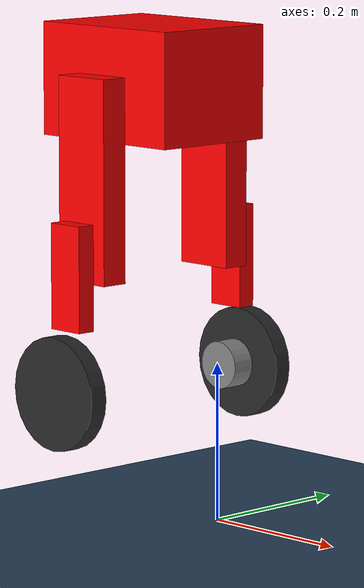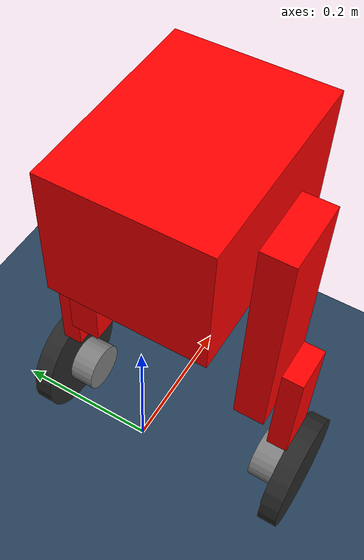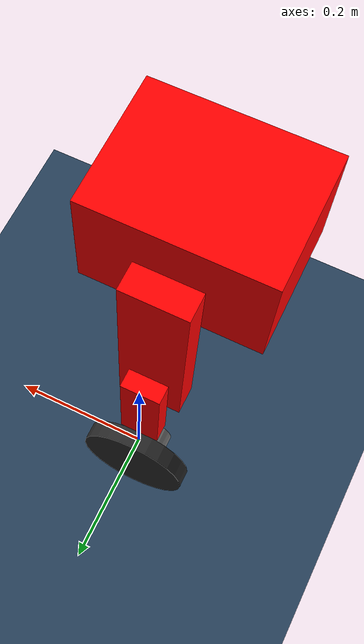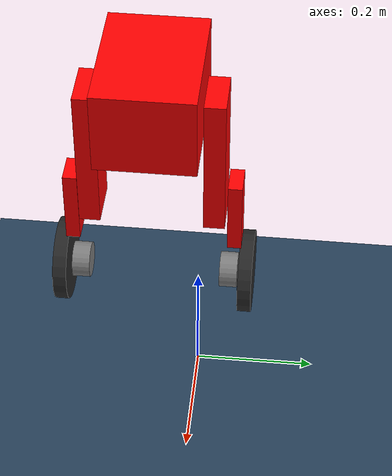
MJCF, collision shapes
<mujoco model="Biped wheel scene">
  <include file="bipedwheel.xml"/>

  <option timestep="0.002" gravity="0 0 -9.81" integrator="implicitfast" />

  <statistic center="0 0 0.1" extent="0.8"/>

  <visual>
    <headlight diffuse="0.6 0.6 0.6" ambient="0.3 0.3 0.3" specular="0 0 0"/>
    <rgba haze="0.15 0.25 0.35 1"/>
    <global azimuth="-130" elevation="-20"/>
  </visual>

  <asset>
    <texture type="skybox" builtin="gradient" rgb1="0.3 0.5 0.7" rgb2="0 0 0" width="512" height="3072"/>
    <texture type="2d" name="groundplane" builtin="checker" mark="edge" rgb1="0.2 0.3 0.4" rgb2="0.1 0.2 0.3"
      markrgb="0.8 0.8 0.8" width="300" height="300"/>
    <material name="groundplane" texture="groundplane" texuniform="true" texrepeat="5 5" reflectance="0.2"/>
  </asset>

  <worldbody>
    <light pos="0 0 1.5" dir="0 0 -1" directional="true"/>
    <geom name="floor" size="0 0 0.05" type="plane" material="groundplane"/>

  </worldbody>
</mujoco>

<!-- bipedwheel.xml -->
<mujoco model="bipedwheel">
  <compiler angle="radian" meshdir="../../meshes" autolimits="true"/>
  <option cone="elliptic" impratio="100" />
  <option timestep="0.002" gravity="0 0 -9.81"/>

  <default>
      <default class="biped_wheel">
          <geom friction="0.4" margin="0.001" condim="1"/>
          <joint damping="0.1" armature="0.01" frictionloss="0.2"/>
          <motor ctrlrange="-23.7 23.7"/>
          <default class="thigh">
              <joint axis="0 1 0" range="0 2.1"/>
              <motor ctrlrange="-23.7 23.7"/>
          </default>
          <default class="calf">
              <joint axis="0 1 0" range="-3.3 0"/>
              <motor ctrlrange="-23.7 23.7"/>
          </default>
          <default class="visual">
              <geom type="mesh" contype="0" conaffinity="0" group="2"/>
          </default>
          <default class="collision">
              <geom group="3" type="mesh" rgba="1 0 0 0.3" />
              <default class="wheel">
              <geom size="0.022" priority="1" condim="6"
                  friction="0.8 0.02 0.01"/>
              </default>
          </default>
      </default>
  </default>

  <asset>
    <mesh name="base_link" file="base_link.STL"/>
    <mesh name="R_thigh_link" file="R_thigh_link.STL"/>
    <mesh name="R_calf_link" file="R_calf_link.STL"/>
    <mesh name="R_wheel_link" file="R_wheel_link.STL"/>
    <mesh name="L_thigh_link" file="L_thigh_link.STL"/>
    <mesh name="L_calf_link" file="L_calf_link.STL"/>
    <mesh name="L_wheel_link" file="L_wheel_link.STL"/>
    <mesh name="battery" file="battery.STL"/>
  </asset>

  <worldbody>
    <body name="base_link" pos="0 -0.0762001 0.5" childclass="biped_wheel">
        <inertial pos="-0.03497 7.1375E-05 0.055169" quat="1 0 0 0" mass="2.327" diaginertia="0.010702 0.010715 0.014614" />
        <freejoint />
        <site name="imu" pos="0 0 0" size="0.01" rgba="0 0 1 1"/>
        <geom type="mesh" contype="0" conaffinity="0" group="1" density="0" rgba="0.156863 0.156863 0.156863 1" mesh="base_link"/>
        <geom size="0.1085 0.082 0.07" pos="-0.036 0 0.058" type="box" class="collision"/>
        <body name="battery" pos="0 0 0">
          <inertial pos="-0.0775 -1.96e-05 0.055503" quat="1 0 0 0" mass="0.68" diaginertia="0.001214 0.000415 0.000978" />
          <geom type="mesh" contype="0" conaffinity="0" group="1" density="0" rgba="0.247059 0.247059 0.247059 1" mesh="battery"/>
        </body>
        <body name="R_thigh_link" pos="-0.0341458 -0.0849999 0.0485">
          <inertial pos="-0.00116866 -0.0168014 -0.141575" quat="0.694626 -0.0171555 0.0223094 0.71882" mass="0.79" diaginertia="0.00401836 0.00364268 0.00052296"/>
          <joint name="R_thigh_joint" class="thigh"/>
          <geom type="mesh" contype="0" conaffinity="0" group="1" density="0" rgba="0.145098 0.145098 0.145098 1" mesh="R_thigh_link"/>
          <geom size="0.04 0.0175 0.125" pos="0 -0.0175 -0.104" type="box" class="collision"/>
          <body name="R_calf_link" pos="6.23304e-05 -0.0383 -0.18">
            <inertial pos="-0.0001318 -0.0152534 -0.11185" quat="0.706227 -0.0114844 0.0119533 0.707791" mass="0.624823" diaginertia="0.00520652 0.00517913 0.000193779"/>
            <joint name="R_calf_joint" class="calf"/>
            <geom type="mesh" contype="0" conaffinity="0" group="1" density="0" rgba="0.145098 0.145098 0.145098 1" mesh="R_calf_link"/>
            <geom size="0.025 0.0118 0.065" pos="0 -0.0118 -0.04" type="box" class="collision"/>
            <geom size="0.03 0.015" pos="0 -0.00255 -0.18" quat="0.707388 0.706825 0 0" type="cylinder"/>
            <body name="R_wheel_link" pos="0 -0.04255 -0.18">
              <inertial pos="-6.2331e-05 0.00898741 -1.05886e-08" quat="0.707107 0 0 0.707107" mass="0.3" diaginertia="0.000934 0.00048 0.00048"/>
              <joint name="R_wheel_joint" pos="0 0 0" axis="0 1 0" actuatorfrcrange="-3.69 3.69" damping="0.05" armature="0.004" stiffness="0" frictionloss="0.3"/>
              <geom type="mesh" contype="0" conaffinity="0" group="1" density="0" rgba="0.152941 0.152941 0.152941 1" mesh="R_wheel_link"/>
              <geom size="0.07 0.0115" pos="0 0.01 0" quat="0.707388 0.706825 0 0" type="cylinder" rgba="0.152941 0.152941 0.152941 1" class="wheel"/>
            </body>
          </body>
        </body>
        <body name="L_thigh_link" pos="-0.0341458 0.0850001 0.0485">
          <inertial pos="-0.00111964 0.0168014 -0.141576" quat="0.71882 0.0223094 -0.0171555 0.694626" mass="0.79" diaginertia="0.00401836 0.00364268 0.00052296"/>
          <joint name="L_thigh_joint" class="thigh"/>
          <geom type="mesh" contype="0" conaffinity="0" group="1" density="0" rgba="0.145098 0.145098 0.145098 1" mesh="L_thigh_link"/>
          <geom size="0.04 0.0175 0.125" pos="0 0.0175 -0.104" type="box" class="collision"/>
          <body name="L_calf_link" pos="6.23304e-05 0.0383 -0.18">
            <inertial pos="-9.65115e-05 0.0152581 -0.111914" quat="0.707119 0.0120204 -0.0115411 0.706899" mass="0.624823" diaginertia="0.00521172 0.00518528 0.000193726"/>
            <joint name="L_calf_joint" class="calf"/>
            <geom type="mesh" contype="0" conaffinity="0" group="1" density="0" rgba="0.145098 0.145098 0.145098 1" mesh="L_calf_link"/>
            <geom size="0.025 0.0118 0.065" pos="0 0.0118 -0.04" type="box" class="collision"/>
            <geom size="0.03 0.015" pos="0 0.00255 -0.18" quat="0.707388 -0.706825 0 0" type="cylinder"/>
            <body name="L_wheel_link" pos="0 0.04255 -0.18">
              <inertial pos="-8.11407e-10 -0.00898741 2.81785e-10" quat="0.707107 0 0 0.707107" mass="0.3" diaginertia="0.000934 0.00048 0.00048"/>
              <joint name="L_wheel_joint" pos="0 0 0" axis="0 1 0" actuatorfrcrange="-3.69 3.69" damping="0.05" armature="0.004" stiffness="0" frictionloss="0.3"/>
              <geom type="mesh" contype="0" conaffinity="0" group="1" density="0" rgba="0.152941 0.152941 0.152941 1" mesh="L_wheel_link"/>
              <geom size="0.07 0.0115" pos="0 -0.01 0" quat="0.707388 -0.706825 0 0" type="cylinder" rgba="0.152941 0.152941 0.152941 1" class="wheel"/>
            </body>
          </body>
        </body>
      </body>
  </worldbody>

  <actuator>
      <motor class="thigh" name="R_thigh" joint="R_thigh_joint" />
      <motor class="calf" name="R_calf" joint="R_calf_joint" />

      <motor class="thigh" name="L_thigh" joint="L_thigh_joint" />
      <motor class="calf" name="L_calf" joint="L_calf_joint" />

      <motor ctrlrange="-15 15" name="R_wheel" joint="R_wheel_joint" />
      <motor ctrlrange="-15 15" name="L_wheel" joint="L_wheel_joint" />

  </actuator>

  <sensor>

      <jointpos name="R_thigh_pos" joint="R_thigh_joint" />
      <jointpos name="R_calf_pos" joint="R_calf_joint" />

      <jointpos name="L_thigh_pos" joint="L_thigh_joint" />
      <jointpos name="L_calf_pos" joint="L_calf_joint" />

      <jointpos name="R_wheel_pos" joint="R_wheel_joint" />
      <jointpos name="L_wheel_pos" joint="L_wheel_joint" />

      <jointvel name="R_thigh_vel" joint="R_thigh_joint" />
      <jointvel name="R_calf_vel" joint="R_calf_joint" />

      <jointvel name="L_thigh_vel" joint="L_thigh_joint" />
      <jointvel name="L_calf_vel" joint="L_calf_joint" />

      <jointvel name="R_wheel_vel" joint="R_wheel_joint" noise="0.0"/>
      <jointvel name="L_wheel_vel" joint="L_wheel_joint" noise="0.0"/>

      <jointactuatorfrc name="R_thigh_torque" joint="R_thigh_joint" noise="0.01" />
      <jointactuatorfrc name="R_calf_torque" joint="R_calf_joint" noise="0.01" />

      <jointactuatorfrc name="L_thigh_torque" joint="L_thigh_joint" noise="0.01" />
      <jointactuatorfrc name="L_calf_torque" joint="L_calf_joint" noise="0.01" />

      <jointactuatorfrc name="R_wheel_torque" joint="R_wheel_joint" />
      <jointactuatorfrc name="L_wheel_torque" joint="L_wheel_joint" />

      <framequat name="imu_quat" objtype="site" objname="imu" noise="0.0"/>
      <gyro name="imu_gyro" site="imu" noise="0.0"/>
      <accelerometer name="imu_acc" site="imu" />

      <framepos name="frame_pos" objtype="site" objname="imu" />
      <framelinvel name="frame_lin_vel" objtype="site" objname="imu" />
      <frameangvel name="frame_ang_vel" objtype="site" objname="imu" />
      <framequat name="orientation" objtype="site" objname="imu" />
      <subtreelinvel name="base_lin_vel" body="base_link" />
      <gyro name="base_ang_vel" site="imu" />
      <framepos name="base_pos" objtype="body" objname="base_link" />
  </sensor>

  <keyframe>
    <key name="home" qpos="0 0 0.2 1 0 0 0 1.22 -1.92 0 1.22 -1.92 0" ctrl="1.22 -1.92 0 1.22 -1.92 0" />
  </keyframe>
</mujoco>
